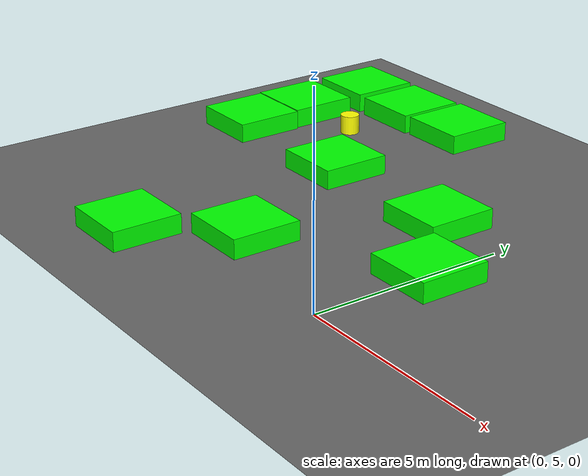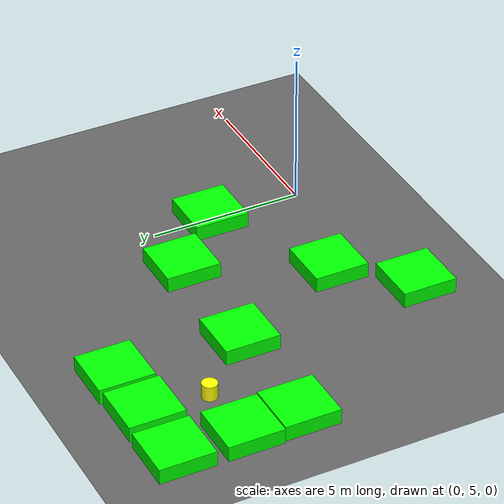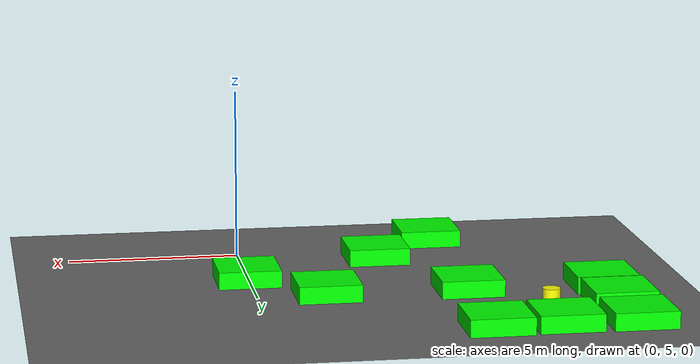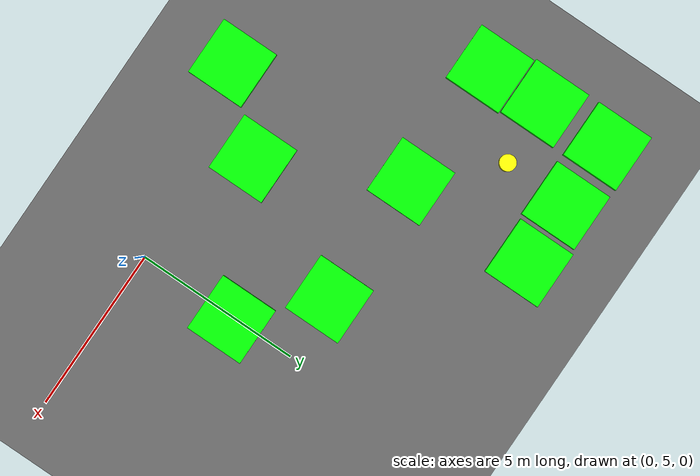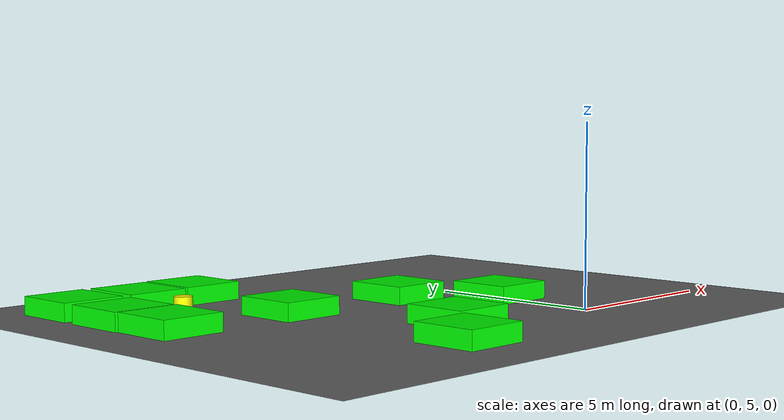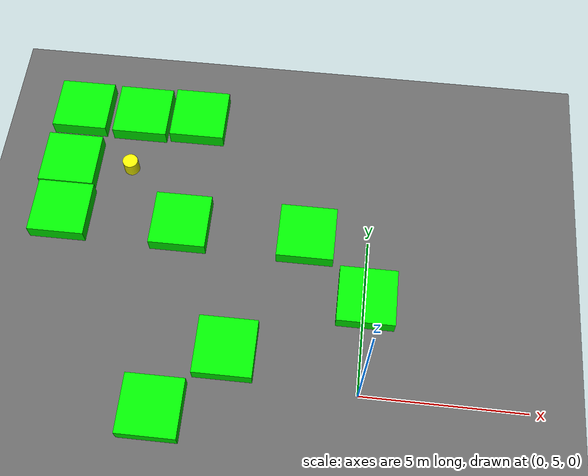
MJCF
<mujoco model="lvl5_corridor_obs10_dlong_depth3_seed2080">
    <compiler angle="degree" coordinate="local" inertiafromgeom="true"/>
    <option integrator="RK4" timestep="0.01"/>

    <asset>
        <texture builtin="gradient" height="100" rgb1="0.6 0.8 1" rgb2="0 0 0" type="skybox" width="100"/>
        <texture name="floor_texture" type="2d" builtin="checker" width="100" height="100" rgb1="0 0 0" rgb2="0.8 0.8 0.8"/>
        <material name="MatPlane" reflectance="0.5" shininess="1" specular="1" texrepeat="10 10" texture="floor_texture"/>
    </asset>

    <!-- Excluding the contact between the agent and the goal, and the agent and the floor -->
    <contact>
        <exclude body1="agent" body2="goal"/>
        <exclude body1 = "agent" body2 = "floor"/>
    </contact>

    <extension>
        <plugin plugin = "mujoco.pid">
            <instance name = "pid1">
                <config key="kp" value="2"/>
                <config key="ki" value="0"/>
                <config key="kd" value="55"/>
            </instance>
        </plugin>
    </extension>

    <worldbody>
        <light cutoff="100" diffuse="1 1 1" dir="-0 0 -1.3" directional="true" exponent="1" pos="0 0 1.3" specular=".1 .1 .1"/>
        <body name="floor" pos="0 0 0">
            <geom name="floor_geom" type="plane" size="20 20 0.1" material="MatPlane"/>
        </body>

                <body name="goal" pos="0.0000 0.0000 0">
            <geom name="goal_geom" type="plane" size="0.5 0.5 1" pos="0 0 0" rgba="1 0 0 1"/>
        </body>

                <body name="agent" pos="-8.0000 12.0000 0.250">
            <joint name="j1" type="slide" axis ="1 0 0 "/>
            <joint name="j2" type="slide" axis ="0 1 0 "/>
            <geom name="agent_geom" type="cylinder" size="0.25 0.25 0.250" rgba="1 1 0 1"/>
        </body>

        <body name="obstacle1" pos="-9.9720 14.0641 0.250">  <geom name="obstacle1_geom" type="box" size="0.9000 0.9000 0.250" rgba="0 1 0 1"/></body>
        <body name="obstacle2" pos="-7.9257 14.0334 0.250">  <geom name="obstacle2_geom" type="box" size="0.9000 0.9000 0.250" rgba="0 1 0 1"/></body>
        <body name="obstacle3" pos="-5.9973 14.0928 0.250">  <geom name="obstacle3_geom" type="box" size="0.9000 0.9000 0.250" rgba="0 1 0 1"/></body>
        <body name="obstacle4" pos="-9.9755 11.9202 0.250">  <geom name="obstacle4_geom" type="box" size="0.9000 0.9000 0.250" rgba="0 1 0 1"/></body>
        <body name="obstacle5" pos="-9.9106 10.0887 0.250">  <geom name="obstacle5_geom" type="box" size="0.9000 0.9000 0.250" rgba="0 1 0 1"/></body>
        <body name="obstacle6" pos="-6.0219 10.0325 0.250">  <geom name="obstacle6_geom" type="box" size="0.9000 0.9000 0.250" rgba="0 1 0 1"/></body>
        <body name="obstacle7" pos="-1.9710 10.0029 0.250">  <geom name="obstacle7_geom" type="box" size="0.9000 0.9000 0.250" rgba="0 1 0 1"/></body>
        <body name="obstacle8" pos="0.0609 8.0370 0.250">  <geom name="obstacle8_geom" type="box" size="0.9000 0.9000 0.250" rgba="0 1 0 1"/></body>
        <body name="obstacle9" pos="-4.0345 5.9786 0.250">  <geom name="obstacle9_geom" type="box" size="0.9000 0.9000 0.250" rgba="0 1 0 1"/></body>
        <body name="obstacle10" pos="-5.9405 3.9798 0.250">  <geom name="obstacle10_geom" type="box" size="0.9000 0.9000 0.250" rgba="0 1 0 1"/></body>

    </worldbody>

    <sensor>
<!-- SENSORS -->

        <distance name="dist1" geom1="agent_geom" geom2="obstacle1_geom" cutoff="1.5"/>
        <distance name="dist2" geom1="agent_geom" geom2="obstacle2_geom" cutoff="1.5"/>
        <distance name="dist3" geom1="agent_geom" geom2="obstacle3_geom" cutoff="1.5"/>
        <distance name="dist4" geom1="agent_geom" geom2="obstacle4_geom" cutoff="1.5"/>
        <distance name="dist5" geom1="agent_geom" geom2="obstacle5_geom" cutoff="1.5"/>
        <distance name="dist6" geom1="agent_geom" geom2="obstacle6_geom" cutoff="1.5"/>
        <distance name="dist7" geom1="agent_geom" geom2="obstacle7_geom" cutoff="1.5"/>
        <distance name="dist8" geom1="agent_geom" geom2="obstacle8_geom" cutoff="1.5"/>
        <distance name="dist9" geom1="agent_geom" geom2="obstacle9_geom" cutoff="1.5"/>
        <distance name="dist10" geom1="agent_geom" geom2="obstacle10_geom" cutoff="1.5"/>
</sensor>

    <actuator>
        <plugin joint="j1" plugin="mujoco.pid" instance="pid1" />
        <plugin joint="j2" plugin="mujoco.pid" instance="pid1"/>
    </actuator>
</mujoco>
